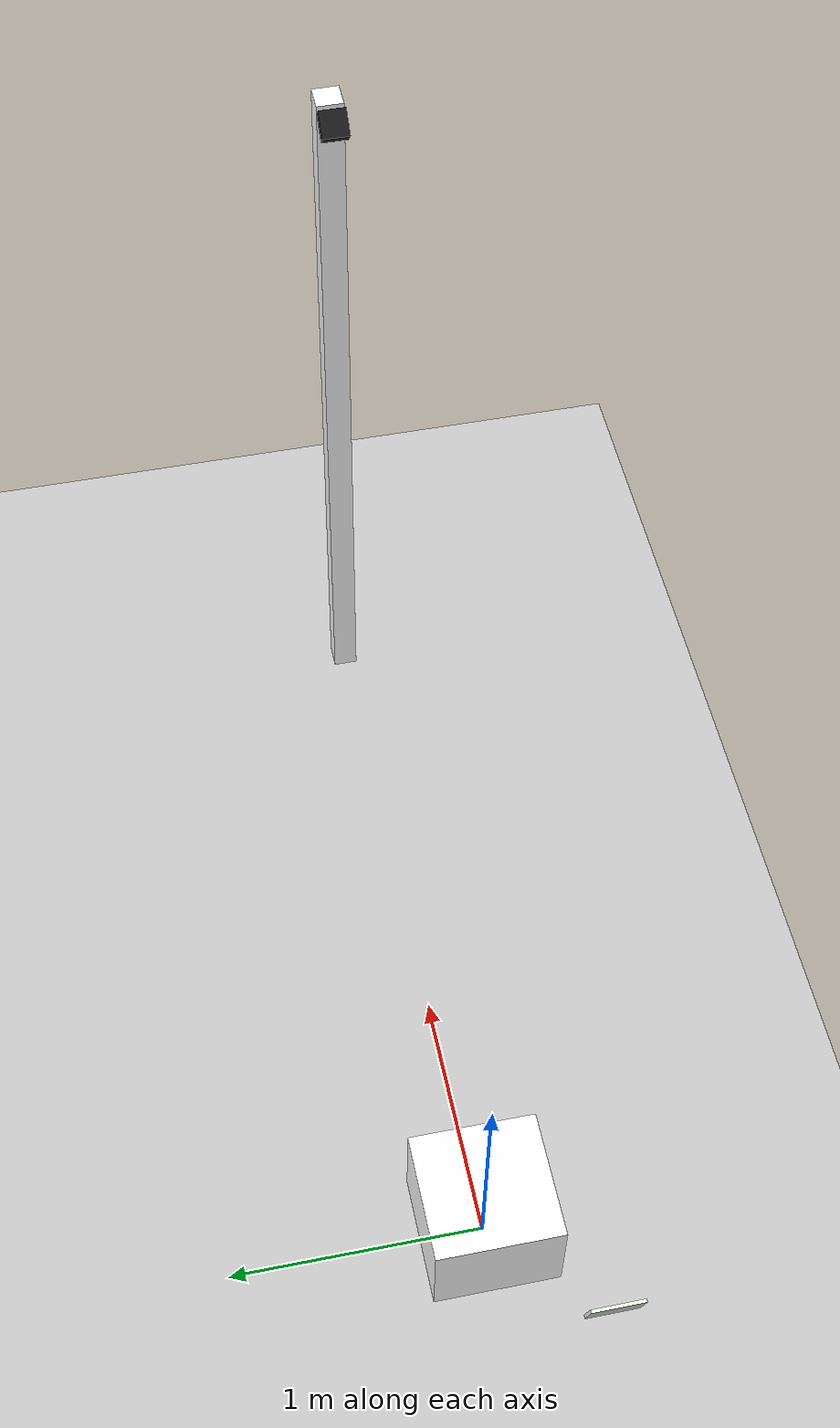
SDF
<sdf version="1.9">
 <world name="EV_scenario">
  <physics name="1ms" type="ignored">
   <max_step_size>0.001</max_step_size>
   <real_time_factor>1</real_time_factor>
   <real_time_update_rate>1000</real_time_update_rate>
  </physics>
  <plugin name="gz::sim::systems::Physics" filename="gz-sim-physics-system"/>
  <plugin name="gz::sim::systems::UserCommands" filename="gz-sim-user-commands-system"/>
  <plugin name="gz::sim::systems::SceneBroadcaster" filename="gz-sim-scene-broadcaster-system"/>
  <plugin name="gz::sim::systems::Contact" filename="gz-sim-contact-system"/>
  <plugin name="gz::sim::systems::Sensors" filename="gz-sim-sensors-system">
   <render_engine>ogre2</render_engine>
  </plugin>
  <gravity>0 0 -9.8</gravity>
  <magnetic_field>6e-06 2.3e-05 -4.2e-05</magnetic_field>
  <atmosphere type="adiabatic"/>
  <scene><ambient>0.4 0.4 0.4 1</ambient><background>0.7 0.7 0.7 1</background><shadows>true</shadows></scene>
  <model name="ground_plane">
   <static>true</static>
   <link name="link">
    <collision name="collision">
     <geometry><plane><normal>0 0 1</normal><size>100 100</size></plane></geometry>
    </collision>
    <visual name="visual">
     <geometry><plane><normal>0 0 1</normal><size>100 100</size></plane></geometry>
     <material>
      <ambient>0.8 0.8 0.8 1</ambient>
      <diffuse>0.8 0.8 0.8 1</diffuse>
      <specular>0.8 0.8 0.8 1</specular>
     </material>
    </visual>
    <inertial>
     <mass>1</mass>
     <inertia><ixx>1</ixx><ixy>0</ixy><ixz>0</ixz><iyy>1</iyy><iyz>0</iyz><izz>1</izz></inertia>
    </inertial>
   </link>
  </model>
  <model name="arm_base">
   <pose>0.0 0.0 0.2 0 0 0</pose>
   <link name="box_link">
    <inertial>
     <inertia><ixx>0.16666</ixx><ixy>0</ixy><ixz>0</ixz><iyy>0.16666</iyy><iyz>0</iyz><izz>0.16666</izz></inertia>
     <mass>1</mass>
    </inertial>
    <collision name="box_collision"><geometry><box><size>0.5 0.5 0.4</size></box></geometry></collision>
    <visual name="box_visual">
     <geometry><box><size>0.5 0.5 0.4</size></box></geometry>
     <material><ambient>0.3 0.3 0.3 1</ambient><diffuse>1 1 1 1</diffuse><specular>1 1 1 1</specular></material>
    </visual>
   </link>
   <static>false</static>
  </model>
  <include>
   <uri>model://ccs2_inlet_cube</uri>
   <pose>-0.85 -0.2 1.22 0.0 -0.26 0.0</pose>
   <static>true</static>
  </include>
  <model name="stationary_camera_model">
   <static>true</static>
   <pose>2.79 0.0 3.12 0.0 0.67 3.14</pose>
   <link name="stationary_camera_link">
    <inertial>
     <mass>0.1</mass>
     <inertia><ixx>0.001</ixx><ixy>0</ixy><ixz>0</ixz><iyy>0.001</iyy><iyz>0</iyz><izz>0.001</izz></inertia>
    </inertial>
    <visual name="visual">
     <geometry><box><size>0.1 0.1 0.05</size></box></geometry>
     <material>
      <ambient>0.1 0.1 0.1 1.0</ambient>
      <diffuse>0.1 0.1 0.1 1.0</diffuse>
      <specular>0.01 0.01 0.01 1.0</specular>
     </material>
    </visual>
   </link>
   <joint name="stationary_camera_optical_joint" type="fixed">
    <parent>stationary_camera_link</parent>
    <child>stationary_camera_optical_link</child>
    <pose>0.0 0.0 0.0 0 1.57 0</pose>
   </joint>
   <link name="stationary_camera_optical_link">
    <sensor name="fixed_rgbd_sensor" type="rgbd_camera">
     <visualize>true</visualize>
     <update_rate>30.0</update_rate>
     <always_on>true</always_on>
     <camera>
      <vertical_fov>1.089</vertical_fov>
      <horizontal_fov>1.5</horizontal_fov>
      <image><format>R8G8B8</format><width>1920</width><height>1080</height></image>
      <clip><near>0.05</near><far>15.0</far></clip>
     </camera>
     <depth_camera><clip><near>0.05</near><far>15.0</far></clip></depth_camera>
     <plugin filename="gz-sim-ros-image-bridge" name="gz::sim::systems::Ros2ImageBridge">
      <gz_topic>/world/EV_scenario/model/stationary_camera_model/link/stationary_camera_optical_link/sensor/fixed_rgbd_sensor/image</gz_topic>
      <ros_topic>/stationary_camera/image</ros_topic>
      <frame_id>stationary_camera_optical_link</frame_id>
      <camera_info_topic>/world/EV_scenario/model/stationary_camera_model/link/stationary_camera_optical_link/sensor/fixed_rgbd_sensor/camera_info</camera_info_topic>
     </plugin>
     <plugin filename="gz-sim-ros-depth-camera-bridge" name="gz::sim::systems::Ros2DepthCameraBridge">
      <gz_topic>/world/EV_scenario/model/stationary_camera_model/link/stationary_camera_optical_link/sensor/fixed_rgbd_sensor/depth_image</gz_topic>
      <ros_topic>/stationary_camera/depth_image</ros_topic>
      <point_cloud_topic>/world/EV_scenario/model/stationary_camera_model/link/stationary_camera_optical_link/sensor/fixed_rgbd_sensor/depth_points</point_cloud_topic>
      <frame_id>stationary_camera_optical_link</frame_id>
     </plugin>
    </sensor>
   </link>
  </model>
  <model name="stationary_camera_base">
   <pose>2.9 0.0 1.56 0 0 0</pose>
   <link name="box_link">
    <inertial>
     <inertia><ixx>0.16666</ixx><ixy>0</ixy><ixz>0</ixz><iyy>0.16666</iyy><iyz>0</iyz><izz>0.16666</izz></inertia>
     <mass>1</mass>
    </inertial>
    <collision name="box_collision"><geometry><box><size>0.1 0.1 3.2</size></box></geometry></collision>
    <visual name="box_visual">
     <geometry><box><size>0.1 0.1 3.2</size></box></geometry>
     <material><ambient>0.3 0.3 0.3 1</ambient><diffuse>1 1 1 1</diffuse><specular>1 1 1 1</specular></material>
    </visual>
   </link>
   <static>false</static>
  </model>
  <light name="sun" type="directional">
   <pose>0 0 10 0 -0 0</pose>
   <intensity>1</intensity>
   <direction>-0.5 0.1 -0.9</direction>
   <diffuse>0.8 0.8 0.8 1</diffuse>
   <specular>0.2 0.2 0.2 1</specular>
   <attenuation>
    <range>1000</range>
    <linear>0.01</linear>
    <constant>0.90000000000000002</constant>
    <quadratic>0.001</quadratic>
   </attenuation>
   <spot><inner_angle>0</inner_angle><outer_angle>0</outer_angle><falloff>0</falloff></spot>
  </light>
 </world>
</sdf>

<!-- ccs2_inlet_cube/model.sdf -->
<sdf version="1.9">
  <model name="ccs2_inlet_cube">
    <link name="link">
      <visual name="visual">
        <geometry>
          <mesh>
            <scale>0.13 0.13 0.13</scale>
            <uri>ccs2_inlet_box.dae</uri>
          </mesh>
        </geometry>
      </visual>
      <collision name="collision">
        <geometry>
          <mesh>
            <scale>0.13 0.13 0.13</scale>
            <uri>ccs2_inlet_box.dae</uri>
          </mesh>
        </geometry>
      </collision>
    </link>
  </model>
</sdf>
